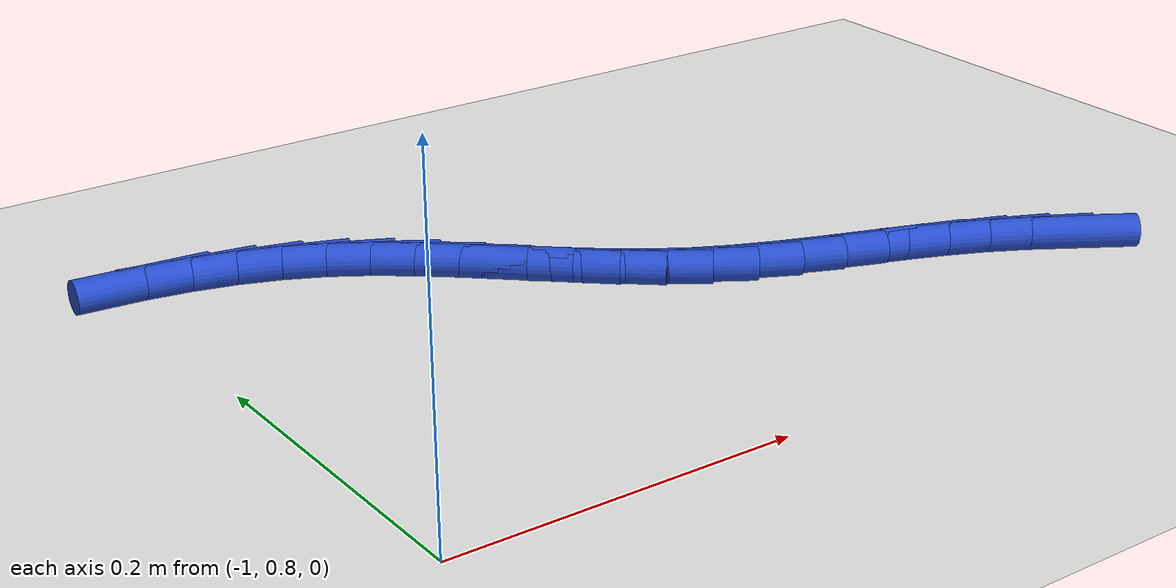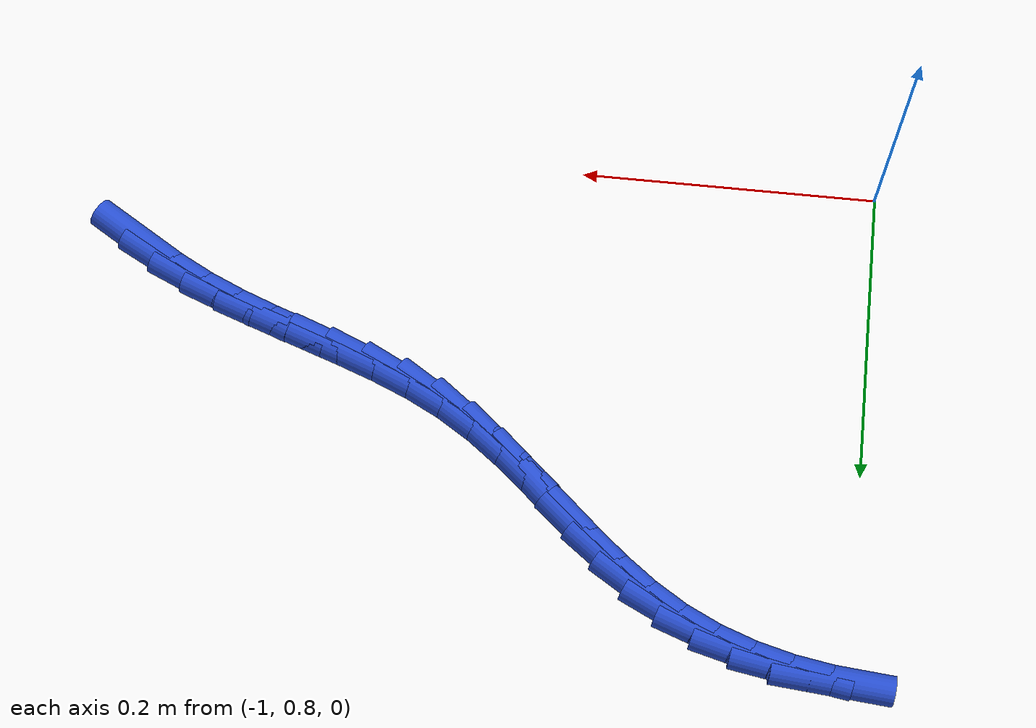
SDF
<sdf version="1.6">
 <world name="default">
  <model name="ground_plane">
   <static>1</static>
   <link name="link">
    <collision name="collision">
     <geometry><plane><normal>0 0 1</normal><size>100 100</size></plane></geometry>
     <surface><friction><ode><mu>100</mu><mu2>50</mu2></ode></friction></surface>
    </collision>
    <visual name="visual">
     <cast_shadows>0</cast_shadows>
     <geometry><plane><normal>0 0 1</normal><size>100 100</size></plane></geometry>
     <material>
      <script><uri>file://media/materials/scripts/gazebo.material</uri><name>Gazebo/WhiteGlow</name></script>
     </material>
    </visual>
   </link>
  </model>
  <model name="line">
   <link name="link_41">
    <pose>-0.5092598030923114 0.8857325968897525 0.01 0 1.57 -0.5542290019331925</pose>
    <collision name="collision">
     <geometry><cylinder><radius>0.01</radius><length>0.08</length></cylinder></geometry>
    </collision>
    <visual name="visual">
     <material>
      <script><name>Gazebo/Blue</name><uri>file://media/materials/scripts/gazebo.material</uri></script>
     </material>
     <geometry><cylinder><radius>0.01</radius><length>0.08</length></cylinder></geometry>
    </visual>
   </link>
   <link name="link_42">
    <pose>-0.5311120358488224 0.8992577970611848 0.01 0 1.57 -0.4894550342461614</pose>
    <collision name="collision">
     <geometry><cylinder><radius>0.01</radius><length>0.08</length></cylinder></geometry>
    </collision>
    <visual name="visual">
     <material>
      <script><name>Gazebo/Blue</name><uri>file://media/materials/scripts/gazebo.material</uri></script>
     </material>
     <geometry><cylinder><radius>0.01</radius><length>0.08</length></cylinder></geometry>
    </visual>
   </link>
   <link name="link_43">
    <pose>-0.5538393157915735 0.91136435408404 0.01 0 1.57 -0.41960881596879585</pose>
    <collision name="collision">
     <geometry><cylinder><radius>0.01</radius><length>0.08</length></cylinder></geometry>
    </collision>
    <visual name="visual">
     <material>
      <script><name>Gazebo/Blue</name><uri>file://media/materials/scripts/gazebo.material</uri></script>
     </material>
     <geometry><cylinder><radius>0.01</radius><length>0.08</length></cylinder></geometry>
    </visual>
   </link>
   <link name="link_44">
    <pose>-0.5775306258490446 0.9219331287975742 0.01 0 1.57 -0.36639053939485766</pose>
    <collision name="collision">
     <geometry><cylinder><radius>0.01</radius><length>0.08</length></cylinder></geometry>
    </collision>
    <visual name="visual">
     <material>
      <script><name>Gazebo/Blue</name><uri>file://media/materials/scripts/gazebo.material</uri></script>
     </material>
     <geometry><cylinder><radius>0.01</radius><length>0.08</length></cylinder></geometry>
    </visual>
   </link>
   <link name="link_45">
    <pose>-0.6019781771864022 0.931314057357964 0.01 0 1.57 -0.3385262993515373</pose>
    <collision name="collision">
     <geometry><cylinder><radius>0.01</radius><length>0.08</length></cylinder></geometry>
    </collision>
    <visual name="visual">
     <material>
      <script><name>Gazebo/Blue</name><uri>file://media/materials/scripts/gazebo.material</uri></script>
     </material>
     <geometry><cylinder><radius>0.01</radius><length>0.08</length></cylinder></geometry>
    </visual>
   </link>
   <link name="link_46">
    <pose>-0.6268409119523912 0.940067719971263 0.01 0 1.57 -0.33525579726821875</pose>
    <collision name="collision">
     <geometry><cylinder><radius>0.01</radius><length>0.08</length></cylinder></geometry>
    </collision>
    <visual name="visual">
     <material>
      <script><name>Gazebo/Blue</name><uri>file://media/materials/scripts/gazebo.material</uri></script>
     </material>
     <geometry><cylinder><radius>0.01</radius><length>0.08</length></cylinder></geometry>
    </visual>
   </link>
   <link name="link_47">
    <pose>-0.6517771381834858 0.9487556991168247 0.01 0 1.57 -0.35640045772413664</pose>
    <collision name="collision">
     <geometry><cylinder><radius>0.01</radius><length>0.08</length></cylinder></geometry>
    </collision>
    <visual name="visual">
     <material>
      <script><name>Gazebo/Blue</name><uri>file://media/materials/scripts/gazebo.material</uri></script>
     </material>
     <geometry><cylinder><radius>0.01</radius><length>0.08</length></cylinder></geometry>
    </visual>
   </link>
   <link name="link_48">
    <pose>-0.6764451639161606 0.9579395772740014 0.01 0 1.57 -0.40245679982876137</pose>
    <collision name="collision">
     <geometry><cylinder><radius>0.01</radius><length>0.08</length></cylinder></geometry>
    </collision>
    <visual name="visual">
     <material>
      <script><name>Gazebo/Blue</name><uri>file://media/materials/scripts/gazebo.material</uri></script>
     </material>
     <geometry><cylinder><radius>0.01</radius><length>0.08</length></cylinder></geometry>
    </visual>
   </link>
   <link name="link_49">
    <pose>-0.7005032971868895 0.9681809369221455 0.01 0 1.57 -0.4742251573824438</pose>
    <collision name="collision">
     <geometry><cylinder><radius>0.01</radius><length>0.08</length></cylinder></geometry>
    </collision>
    <visual name="visual">
     <material>
      <script><name>Gazebo/Blue</name><uri>file://media/materials/scripts/gazebo.material</uri></script>
     </material>
     <geometry><cylinder><radius>0.01</radius><length>0.08</length></cylinder></geometry>
    </visual>
   </link>
   <link name="link_50">
    <pose>-0.7236098460321476 0.98004136054061 0.01 0 1.57 -0.5691463390385256</pose>
    <collision name="collision">
     <geometry><cylinder><radius>0.01</radius><length>0.08</length></cylinder></geometry>
    </collision>
    <visual name="visual">
     <material>
      <script><name>Gazebo/Blue</name><uri>file://media/materials/scripts/gazebo.material</uri></script>
     </material>
     <geometry><cylinder><radius>0.01</radius><length>0.08</length></cylinder></geometry>
    </visual>
   </link>
   <link name="link_51">
    <pose>-0.7454601948358864 0.9940204452381693 0.01 0 1.57 -0.6547121877764799</pose>
    <collision name="collision">
     <geometry><cylinder><radius>0.01</radius><length>0.08</length></cylinder></geometry>
    </collision>
    <visual name="visual">
     <material>
      <script><name>Gazebo/Blue</name><uri>file://media/materials/scripts/gazebo.material</uri></script>
     </material>
     <geometry><cylinder><radius>0.01</radius><length>0.08</length></cylinder></geometry>
    </visual>
   </link>
   <link name="link_52">
    <pose>-0.7661685626642528 1.0099175675044452 0.01 0 1.57 -0.7108308987216927</pose>
    <collision name="collision">
     <geometry><cylinder><radius>0.01</radius><length>0.08</length></cylinder></geometry>
    </collision>
    <visual name="visual">
     <material>
      <script><name>Gazebo/Blue</name><uri>file://media/materials/scripts/gazebo.material</uri></script>
     </material>
     <geometry><cylinder><radius>0.01</radius><length>0.08</length></cylinder></geometry>
    </visual>
   </link>
   <link name="link_53">
    <pose>-0.786113712180207 1.0270898317608 0.01 0 1.57 -0.7381318162916466</pose>
    <collision name="collision">
     <geometry><cylinder><radius>0.01</radius><length>0.08</length></cylinder></geometry>
    </collision>
    <visual name="visual">
     <material>
      <script><name>Gazebo/Blue</name><uri>file://media/materials/scripts/gazebo.material</uri></script>
     </material>
     <geometry><cylinder><radius>0.01</radius><length>0.08</length></cylinder></geometry>
    </visual>
   </link>
   <link name="link_54">
    <pose>-0.8056785671275642 1.0448873858064789 0.01 0 1.57 -0.7373775400622639</pose>
    <collision name="collision">
     <geometry><cylinder><radius>0.01</radius><length>0.08</length></cylinder></geometry>
    </collision>
    <visual name="visual">
     <material>
      <script><name>Gazebo/Blue</name><uri>file://media/materials/scripts/gazebo.material</uri></script>
     </material>
     <geometry><cylinder><radius>0.01</radius><length>0.08</length></cylinder></geometry>
    </visual>
   </link>
   <link name="link_55">
    <pose>-0.8252460512501404 1.0626603774407275 0.01 0 1.57 -0.7085099393509378</pose>
    <collision name="collision">
     <geometry><cylinder><radius>0.01</radius><length>0.08</length></cylinder></geometry>
    </collision>
    <visual name="visual">
     <material>
      <script><name>Gazebo/Blue</name><uri>file://media/materials/scripts/gazebo.material</uri></script>
     </material>
     <geometry><cylinder><radius>0.01</radius><length>0.08</length></cylinder></geometry>
    </visual>
   </link>
   <link name="link_56">
    <pose>-0.8451990882917504 1.079758954462792 0.01 0 1.57 -0.6506640842835053</pose>
    <collision name="collision">
     <geometry><cylinder><radius>0.01</radius><length>0.08</length></cylinder></geometry>
    </collision>
    <visual name="visual">
     <material>
      <script><name>Gazebo/Blue</name><uri>file://media/materials/scripts/gazebo.material</uri></script>
     </material>
     <geometry><cylinder><radius>0.01</radius><length>0.08</length></cylinder></geometry>
    </visual>
   </link>
   <link name="link_57">
    <pose>-0.8659206019962098 1.0955332646719178 0.01 0 1.57 -0.5628547343251302</pose>
    <collision name="collision">
     <geometry><cylinder><radius>0.01</radius><length>0.08</length></cylinder></geometry>
    </collision>
    <visual name="visual">
     <material>
      <script><name>Gazebo/Blue</name><uri>file://media/materials/scripts/gazebo.material</uri></script>
     </material>
     <geometry><cylinder><radius>0.01</radius><length>0.08</length></cylinder></geometry>
    </visual>
   </link>
   <link name="link_58">
    <pose>-0.8877934293471321 1.1093335643801594 0.01 0 1.57 -0.45359936086249925</pose>
    <collision name="collision">
     <geometry><cylinder><radius>0.01</radius><length>0.08</length></cylinder></geometry>
    </collision>
    <visual name="visual">
     <material>
      <script><name>Gazebo/Blue</name><uri>file://media/materials/scripts/gazebo.material</uri></script>
     </material>
     <geometry><cylinder><radius>0.01</radius><length>0.08</length></cylinder></geometry>
    </visual>
   </link>
   <link name="link_59">
    <pose>-0.9110655543980816 1.1206787732922852 0.01 0 1.57 -0.3489515506930772</pose>
    <collision name="collision">
     <geometry><cylinder><radius>0.01</radius><length>0.08</length></cylinder></geometry>
    </collision>
    <visual name="visual">
     <material>
      <script><name>Gazebo/Blue</name><uri>file://media/materials/scripts/gazebo.material</uri></script>
     </material>
     <geometry><cylinder><radius>0.01</radius><length>0.08</length></cylinder></geometry>
    </visual>
   </link>
   <link name="link_60">
    <pose>-0.935577631462763 1.1295972669762422 0.01 0 1.57 -0.25369937874503556</pose>
    <collision name="collision">
     <geometry><cylinder><radius>0.01</radius><length>0.08</length></cylinder></geometry>
    </collision>
    <visual name="visual">
     <material>
      <script><name>Gazebo/Blue</name><uri>file://media/materials/scripts/gazebo.material</uri></script>
     </material>
     <geometry><cylinder><radius>0.01</radius><length>0.08</length></cylinder></geometry>
    </visual>
   </link>
   <link name="link_61">
    <pose>-0.9610937081624976 1.1362132345995544 0.01 0 1.57 -0.16725583737513247</pose>
    <collision name="collision">
     <geometry><cylinder><radius>0.01</radius><length>0.08</length></cylinder></geometry>
    </collision>
    <visual name="visual">
     <material>
      <script><name>Gazebo/Blue</name><uri>file://media/materials/scripts/gazebo.material</uri></script>
     </material>
     <geometry><cylinder><radius>0.01</radius><length>0.08</length></cylinder></geometry>
    </visual>
   </link>
   <link name="link_62">
    <pose>-0.9873778321186074 1.1406508653297476 0.01 0 1.57 -0.0886491891348493</pose>
    <collision name="collision">
     <geometry><cylinder><radius>0.01</radius><length>0.08</length></cylinder></geometry>
    </collision>
    <visual name="visual">
     <material>
      <script><name>Gazebo/Blue</name><uri>file://media/materials/scripts/gazebo.material</uri></script>
     </material>
     <geometry><cylinder><radius>0.01</radius><length>0.08</length></cylinder></geometry>
    </visual>
   </link>
  </model>
 </world>
</sdf>
